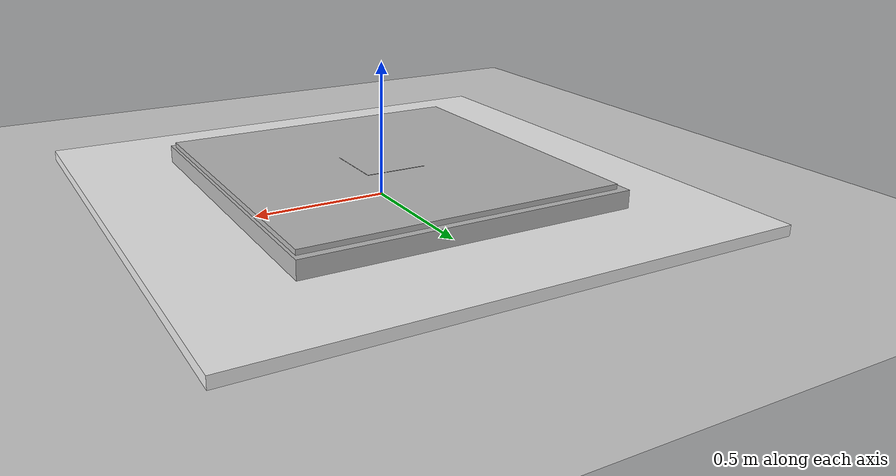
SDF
<?xml version="1.0" ?>
<sdf version="1.6">
  <world name="qr_world">

    <!-- A global light source -->
    <include>
      <uri>model://sun</uri>
    </include>

    <!-- A ground plane -->
    <include>
      <uri>model://ground_plane</uri>
    </include>

    <!-- Landing platform -->
    <model name="landing_platform">
      <pose>0 0 0.02 0 0 0</pose>
      <static>true</static>

      <link name="platform_link">
        <collision name="collision">
          <geometry>
            <box>
              <size>2.0 2.0 0.04</size>
            </box>
          </geometry>
        </collision>

        <visual name="visual">
          <geometry>
            <box>
              <size>2.0 2.0 0.04</size>
            </box>
          </geometry>
          <material>
            <script>
              <uri>file://media/materials/scripts/gazebo.material</uri>
              <name>Gazebo/White</name>
            </script>
          </material>
        </visual>
      </link>
    </model>

    <!-- QR code model using mesh approach from your example -->
    <model name="qr_code">
      <pose>0 0 0.045 0 0 0</pose>
      <static>true</static>
      <link name="link">
        <visual name="visual">
          <geometry>
            <mesh>
              <uri>model://qr_code/meshes/model.dae</uri>
              <scale>1 1 1</scale>
            </mesh>
          </geometry>
        </visual>
      </link>
    </model>

    <!-- Fix the light conditions -->
    <scene>
      <ambient>0.4 0.4 0.4 1.0</ambient>
      <shadows>0</shadows>
    </scene>

    <light type="directional" name="some_light">
      <diffuse>0.7 0.7 0.7 0</diffuse>
      <specular>1 1 1 0</specular>
      <direction>-1 -1 -1</direction>
      <pose>-18 0 0 0 0 3.16</pose>
    </light>

    <physics name='default_physics' default='0' type='ode'>
      <gravity>0 0 -9.8066</gravity>
      <ode>
        <solver>
          <type>quick</type>
          <iters>10</iters>
          <sor>1.3</sor>
          <use_dynamic_moi_rescaling>0</use_dynamic_moi_rescaling>
        </solver>
        <constraints>
          <cfm>0</cfm>
          <erp>0.2</erp>
          <contact_max_correcting_vel>100</contact_max_correcting_vel>
          <contact_surface_layer>0.001</contact_surface_layer>
        </constraints>
      </ode>
      <max_step_size>0.004</max_step_size>
      <real_time_factor>1</real_time_factor>
      <real_time_update_rate>250</real_time_update_rate>
      <magnetic_field>6.0e-6 2.3e-5 -4.2e-5</magnetic_field>
    </physics>

    <plugin name='wind_plugin' filename='libgazebo_wind_plugin.so'>
      <frameId>base_link</frameId>
      <namespace>/foo/bar</namespace>
      <xyzOffset>1 0 0</xyzOffset>
      <windDirectionMean>0 1 0</windDirectionMean>
      <windDirectionVariance>0.0</windDirectionVariance>
      <windVelocityMean>0.0</windVelocityMean>
      <windVelocityVariance>0.0</windVelocityVariance>
      <windGustDirection>1 0 0</windGustDirection>
      <windPubTopic>world_wind</windPubTopic>
    </plugin>

    <gui>
      <camera name="gzclient_camera">
        <pose>-12 -8 3 0 0 0.785398</pose>
      </camera>
    </gui>

  </world>
</sdf>
